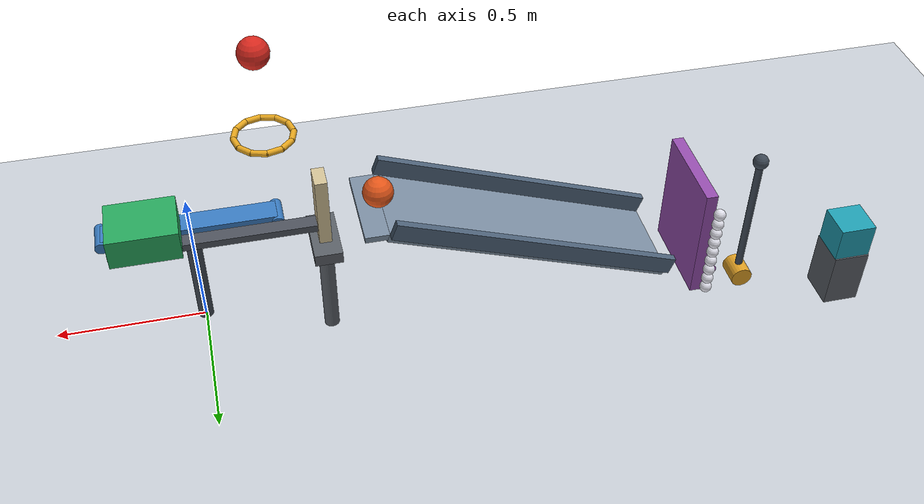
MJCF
<mujoco model="passive_chain_reaction_final_angle_revision">
  <compiler angle="degree" autolimits="true"/>
  <option timestep="0.002" gravity="0 0 -9.81" integrator="implicitfast" solver="Newton" iterations="100" tolerance="1e-10"/>
  <statistic center="-0.85 0.15 0.50" extent="2.4"/>

  <visual>
    <headlight ambient="0.35 0.35 0.35" diffuse="0.65 0.65 0.65" specular="0.15 0.15 0.15"/>
    <rgba haze="0.85 0.90 0.95 1"/>
  </visual>

  <worldbody>
    <light name="scene_light" pos="-0.5 -2 4" dir="0 0.4 -1" diffuse="0.8 0.8 0.8"/>
    <geom name="floor" type="plane" pos="0 0 0" size="4 3 0.1" friction="0.72 0.005 0.005" condim="6" priority="1" solref="0.006 0.7156" solimp="0.95 0.95 0.001" rgba="0.78 0.80 0.83 1"/>

    <!-- Capsule centerlines provide a 0.16 m clear inscribed diameter. -->
    <body name="ring1" pos="-0.27 0 0.72">
      <geom name="ring1_segment01" type="capsule" fromto="0.093175 0 0 0.080691 0.046588 0" size="0.01" friction="0.72 0.005 0.005" condim="3" solref="0.006 0.7156" solimp="0.95 0.95 0.001" rgba="0.9 0.65 0.12 1"/>
      <geom name="ring1_segment02" type="capsule" fromto="0.080691 0.046588 0 0.046588 0.080691 0" size="0.01" friction="0.72 0.005 0.005" condim="3" solref="0.006 0.7156" solimp="0.95 0.95 0.001" rgba="0.9 0.65 0.12 1"/>
      <geom name="ring1_segment03" type="capsule" fromto="0.046588 0.080691 0 0 0.093175 0" size="0.01" friction="0.72 0.005 0.005" condim="3" solref="0.006 0.7156" solimp="0.95 0.95 0.001" rgba="0.9 0.65 0.12 1"/>
      <geom name="ring1_segment04" type="capsule" fromto="0 0.093175 0 -0.046588 0.080691 0" size="0.01" friction="0.72 0.005 0.005" condim="3" solref="0.006 0.7156" solimp="0.95 0.95 0.001" rgba="0.9 0.65 0.12 1"/>
      <geom name="ring1_segment05" type="capsule" fromto="-0.046588 0.080691 0 -0.080691 0.046588 0" size="0.01" friction="0.72 0.005 0.005" condim="3" solref="0.006 0.7156" solimp="0.95 0.95 0.001" rgba="0.9 0.65 0.12 1"/>
      <geom name="ring1_segment06" type="capsule" fromto="-0.080691 0.046588 0 -0.093175 0 0" size="0.01" friction="0.72 0.005 0.005" condim="3" solref="0.006 0.7156" solimp="0.95 0.95 0.001" rgba="0.9 0.65 0.12 1"/>
      <geom name="ring1_segment07" type="capsule" fromto="-0.093175 0 0 -0.080691 -0.046588 0" size="0.01" friction="0.72 0.005 0.005" condim="3" solref="0.006 0.7156" solimp="0.95 0.95 0.001" rgba="0.9 0.65 0.12 1"/>
      <geom name="ring1_segment08" type="capsule" fromto="-0.080691 -0.046588 0 -0.046588 -0.080691 0" size="0.01" friction="0.72 0.005 0.005" condim="3" solref="0.006 0.7156" solimp="0.95 0.95 0.001" rgba="0.9 0.65 0.12 1"/>
      <geom name="ring1_segment09" type="capsule" fromto="-0.046588 -0.080691 0 0 -0.093175 0" size="0.01" friction="0.72 0.005 0.005" condim="3" solref="0.006 0.7156" solimp="0.95 0.95 0.001" rgba="0.9 0.65 0.12 1"/>
      <geom name="ring1_segment10" type="capsule" fromto="0 -0.093175 0 0.046588 -0.080691 0" size="0.01" friction="0.72 0.005 0.005" condim="3" solref="0.006 0.7156" solimp="0.95 0.95 0.001" rgba="0.9 0.65 0.12 1"/>
      <geom name="ring1_segment11" type="capsule" fromto="0.046588 -0.080691 0 0.080691 -0.046588 0" size="0.01" friction="0.72 0.005 0.005" condim="3" solref="0.006 0.7156" solimp="0.95 0.95 0.001" rgba="0.9 0.65 0.12 1"/>
      <geom name="ring1_segment12" type="capsule" fromto="0.080691 -0.046588 0 0.093175 0 0" size="0.01" friction="0.72 0.005 0.005" condim="3" solref="0.006 0.7156" solimp="0.95 0.95 0.001" rgba="0.9 0.65 0.12 1"/>
    </body>

    <!-- Ball center starts 0.30 m above the ring plane.
         Initial lever-contact center height is 0.25 m below that plane. -->
    <body name="ball1" pos="-0.27 0 1.02">
      <freejoint name="ball1_free"/>
      <geom name="ball1_sphere" type="sphere" size="0.05" mass="0.20" friction="0.72 0.005 0.005" condim="3" solref="0.006 0.7156" solimp="0.95 0.95 0.001" rgba="0.85 0.16 0.12 1"/>
    </body>

    <body name="lever1_mount" pos="0 0 0.19">
      <geom name="lever1_mount_post" type="cylinder" size="0.025 0.19" contype="0" conaffinity="0" friction="0.72 0.005 0.005" rgba="0.25 0.28 0.32 1"/>
    </body>

    <!-- Lever envelope: 0.60 x 0.10 x 0.04 m; total mass: 0.50 kg. -->
    <body name="lever1" pos="0 0 0.40">
      <joint name="lever1_hinge" type="hinge" axis="0 -1 0" range="0 45" damping="0.04" margin="0" solreflimit="0.006 1" solimplimit="0.99 0.99 0.001"/>
      <geom name="lever1_beam" type="box" size="0.28 0.04 0.02" mass="0.46" friction="0.72 0.005 0.005" condim="3" solref="0.006 0.7156" solimp="0.95 0.95 0.001" rgba="0.22 0.48 0.75 1"/>
      <geom name="lever1_left_end" type="cylinder" pos="-0.28 0 0" euler="90 0 0" size="0.02 0.05" mass="0.02" friction="0.72 0.005 0.005" condim="3" solref="0.006 0.7156" solimp="0.95 0.95 0.001" rgba="0.22 0.48 0.75 1"/>
      <geom name="lever1_right_end" type="cylinder" pos="0.28 0 0" euler="90 0 0" size="0.02 0.05" mass="0.02" friction="0.72 0.005 0.005" condim="3" solref="0.006 0.7156" solimp="0.95 0.95 0.001" rgba="0.22 0.48 0.75 1"/>
    </body>

    <body name="cart1_guide" pos="-0.075 0.135 0.45">
      <geom name="cart1_guide_rail" type="box" size="0.33 0.025 0.012" contype="0" conaffinity="0" friction="0.72 0.005 0.005" rgba="0.30 0.32 0.36 1"/>
    </body>

    <!-- Cart first contacts domino1 after 0.42 m of travel. -->
    <body name="cart1" pos="0.135 0.135 0.52">
      <joint name="cart1_slide" type="slide" axis="-1 0 0" range="0 0.435" damping="0.20" margin="0" solreflimit="0.006 1" solimplimit="0.95 0.95 0.001"/>
      <geom name="cart1_box" type="box" size="0.11 0.09 0.05" mass="0.50" friction="0.72 0.005 0.005" condim="3" solref="0.006 0.7156" solimp="0.95 0.95 0.001" rgba="0.15 0.65 0.36 1"/>
    </body>

    <body name="domino1_support" pos="-0.415 0.135 0">
      <geom name="domino1_support_post" type="cylinder" pos="0 0 0.18" size="0.025 0.18" friction="0.72 0.005 0.005" condim="3" solref="0.006 0.7156" solimp="0.95 0.95 0.001" rgba="0.35 0.37 0.40 1"/>
      <geom name="domino1_support_top" type="box" pos="0 0 0.38" size="0.045 0.10 0.02" friction="0.72 0.005 0.005" condim="3" solref="0.006 0.7156" solimp="0.95 0.95 0.001" rgba="0.35 0.37 0.40 1"/>
    </body>

    <body name="domino1" pos="-0.415 0.135 0.52">
      <freejoint name="domino1_free"/>
      <geom name="domino1_box" type="box" size="0.02 0.04 0.12" mass="0.25" friction="0.72 0.005 0.005" condim="3" solref="0.006 0.7156" solimp="0.95 0.95 0.001" rgba="0.82 0.75 0.58 1"/>
    </body>

    <!-- Inclined deck: 1.00 m long, 0.30 m wide, 20 degrees.
         Low-end top surface: x=-1.5426926, z=0.15. -->
    <body name="ramp1" pos="0 0 0">
      <geom name="ramp1_deck" type="box" pos="-1.067716 0.135 0.3069147" euler="0 -20 0" size="0.50 0.15 0.015" friction="0.72 0.005 0.005" condim="3" solref="0.006 0.7156" solimp="0.95 0.95 0.001" rgba="0.48 0.55 0.63 1"/>
      <geom name="ramp1_high_landing" type="box" pos="-0.564 0.135 0.4820201" size="0.039 0.15 0.01" friction="0.72 0.005 0.005" condim="3" solref="0.006 0.7156" solimp="0.95 0.95 0.001" rgba="0.48 0.55 0.63 1"/>
      <geom name="ramp1_left_rail" type="box" pos="-1.0831069 -0.0275 0.3492009" euler="0 -20 0" size="0.50 0.0125 0.03" friction="0.72 0.005 0.005" condim="3" solref="0.006 0.7156" solimp="0.95 0.95 0.001" rgba="0.30 0.38 0.47 1"/>
      <geom name="ramp1_right_rail" type="box" pos="-1.0831069 0.2975 0.3492009" euler="0 -20 0" size="0.50 0.0125 0.03" friction="0.72 0.005 0.005" condim="3" solref="0.006 0.7156" solimp="0.95 0.95 0.001" rgba="0.30 0.38 0.47 1"/>
    </body>

    <!-- Domino-to-ball starting center spacing along x is 0.18 m. -->
    <body name="ball2" pos="-0.595 0.135 0.5420201">
      <freejoint name="ball2_free"/>
      <geom name="ball2_sphere" type="sphere" size="0.05" mass="0.20" friction="0.72 0.005 0.005" condim="3" solref="0.006 0.7156" solimp="0.95 0.95 0.001" rgba="0.90 0.34 0.10 1"/>
    </body>

    <!-- Initial panel front face is x=-1.6426926, leaving the 0.10 m ramp gap.
         The panel body has mass 0.45 kg and dimensions 0.42 x 0.32 x 0.04 m. -->
    <body name="door1" pos="-1.6626926 0.135 0.03">
      <inertial pos="0 0 0.21" mass="0.45" diaginertia="0.010455 0.006675 0.0039"/>
      <joint name="door1_hinge" type="hinge" axis="0 -1 0" range="0 70" damping="0.04" margin="0" solreflimit="0.006 1" solimplimit="0.99 0.99 0.001"/>
      <geom name="door1_panel" type="box" pos="0 0 0.21" size="0.02 0.16 0.21" friction="0.72 0.005 0.005" condim="3" solref="0.006 0.7156" solimp="0.95 0.95 0.001" rgba="0.58 0.30 0.68 1"/>
      <geom name="door1_initial_striker" type="sphere" pos="-0.012 0.225 0.16" size="0.012" friction="0.72 0.005 0.005" condim="3" solref="0.006 0.7156" solimp="0.95 0.95 0.001" rgba="0.58 0.30 0.68 1"/>

      <body name="door1_roller01" pos="0 0.225 0.08">
        <joint name="door1_roller01_bearing" type="ball" damping="0.0000015"/>
        <geom name="door1_roller01_surface" type="sphere" size="0.02" mass="0.001" contype="2" conaffinity="1" friction="0.72 0.005 0.005" condim="3" solref="0.006 0.7156" solimp="0.95 0.95 0.001" rgba="0.88 0.88 0.92 1"/>
      </body>
      <body name="door1_roller02" pos="0 0.225 0.12">
        <joint name="door1_roller02_bearing" type="ball" damping="0.0000015"/>
        <geom name="door1_roller02_surface" type="sphere" size="0.02" mass="0.001" contype="2" conaffinity="1" friction="0.72 0.005 0.005" condim="3" solref="0.006 0.7156" solimp="0.95 0.95 0.001" rgba="0.88 0.88 0.92 1"/>
      </body>
      <body name="door1_roller03" pos="0 0.225 0.16">
        <joint name="door1_roller03_bearing" type="ball" damping="0.0000015"/>
        <geom name="door1_roller03_surface" type="sphere" size="0.02" mass="0.001" contype="2" conaffinity="1" friction="0.72 0.005 0.005" condim="3" solref="0.006 0.7156" solimp="0.95 0.95 0.001" rgba="0.88 0.88 0.92 1"/>
      </body>
      <body name="door1_roller04" pos="0 0.225 0.20">
        <joint name="door1_roller04_bearing" type="ball" damping="0.0000015"/>
        <geom name="door1_roller04_surface" type="sphere" size="0.02" mass="0.001" contype="2" conaffinity="1" friction="0.72 0.005 0.005" condim="3" solref="0.006 0.7156" solimp="0.95 0.95 0.001" rgba="0.88 0.88 0.92 1"/>
      </body>
      <body name="door1_roller05" pos="0 0.225 0.24">
        <joint name="door1_roller05_bearing" type="ball" damping="0.0000015"/>
        <geom name="door1_roller05_surface" type="sphere" size="0.02" mass="0.001" contype="2" conaffinity="1" friction="0.72 0.005 0.005" condim="3" solref="0.006 0.7156" solimp="0.95 0.95 0.001" rgba="0.88 0.88 0.92 1"/>
      </body>
      <body name="door1_roller06" pos="0 0.225 0.28">
        <joint name="door1_roller06_bearing" type="ball" damping="0.0000015"/>
        <geom name="door1_roller06_surface" type="sphere" size="0.02" mass="0.001" contype="2" conaffinity="1" friction="0.72 0.005 0.005" condim="3" solref="0.006 0.7156" solimp="0.95 0.95 0.001" rgba="0.88 0.88 0.92 1"/>
      </body>
      <body name="door1_roller07" pos="0 0.225 0.32">
        <joint name="door1_roller07_bearing" type="ball" damping="0.0000015"/>
        <geom name="door1_roller07_surface" type="sphere" size="0.02" mass="0.001" contype="2" conaffinity="1" friction="0.72 0.005 0.005" condim="3" solref="0.006 0.7156" solimp="0.95 0.95 0.001" rgba="0.88 0.88 0.92 1"/>
      </body>
      <body name="door1_roller08" pos="0 0.225 0.36">
        <joint name="door1_roller08_bearing" type="ball" damping="0.0000015"/>
        <geom name="door1_roller08_surface" type="sphere" size="0.02" mass="0.001" contype="2" conaffinity="1" friction="0.72 0.005 0.005" condim="3" solref="0.006 0.7156" solimp="0.95 0.95 0.001" rgba="0.88 0.88 0.92 1"/>
      </body>
      <body name="door1_roller09" pos="0 0.225 0.40">
        <joint name="door1_roller09_bearing" type="ball" damping="0.0000015"/>
        <geom name="door1_roller09_surface" type="sphere" size="0.02" mass="0.001" contype="2" conaffinity="1" friction="0.72 0.005 0.005" condim="3" solref="0.006 0.7156" solimp="0.95 0.95 0.001" rgba="0.88 0.88 0.92 1"/>
      </body>
    </body>

    <!-- Pivot moved 0.0055 m toward the door.
         The rigid pendulum remains 0.50 m long and 0.35 kg.
         Hub, shaft, and striker masses sum to 0.35 kg. -->
    <body name="pendulum1" pos="-1.7671926 0.36 0.63">
      <joint name="pendulum1_hinge" type="hinge" axis="0 1 0" range="0 38" damping="0.04" margin="0" solreflimit="0.006 1" solimplimit="0.99 0.99 0.001"/>
      <geom name="pendulum1_hub" type="sphere" size="0.025" mass="0.24" friction="0.72 0.005 0.005" condim="3" solref="0.006 0.7156" solimp="0.95 0.95 0.001" rgba="0.24 0.28 0.33 1"/>
      <geom name="pendulum1_shaft" type="capsule" fromto="0 0 -0.012 0 0 -0.488" size="0.012" mass="0.09" friction="0.72 0.005 0.005" condim="3" solref="0.006 0.7156" solimp="0.95 0.95 0.001" rgba="0.24 0.28 0.33 1"/>
      <geom name="pendulum1_striker" type="cylinder" pos="0 0 -0.465" euler="90 0 0" size="0.035 0.04" mass="0.02" friction="0.72 0.005 0.005" condim="3" solref="0.006 0.7156" solimp="0.95 0.95 0.001" rgba="0.88 0.63 0.14 1"/>
    </body>

    <!-- Block's right face is positioned at the striker's leftmost point at 38 degrees. -->
    <body name="block1_support" pos="-2.1484752 0.36 0.10">
      <geom name="block1_support_box" type="box" size="0.06 0.065 0.10" friction="0.72 0.005 0.005" condim="3" solref="0.006 0.7156" solimp="0.95 0.95 0.001" rgba="0.35 0.37 0.40 1"/>
    </body>

    <body name="block1" pos="-2.1484752 0.36 0.26">
      <freejoint name="block1_free"/>
      <geom name="block1_cube" type="box" size="0.06 0.06 0.06" mass="0.35" friction="0.72 0.005 0.005" condim="3" solref="0.006 0.7156" solimp="0.95 0.95 0.001" rgba="0.12 0.62 0.70 1"/>
    </body>
  </worldbody>

  <!-- Initial model positions and zero velocities; no actuators or external impulses. -->
  <keyframe>
    <key name="start" time="0"/>
  </keyframe>
</mujoco>
